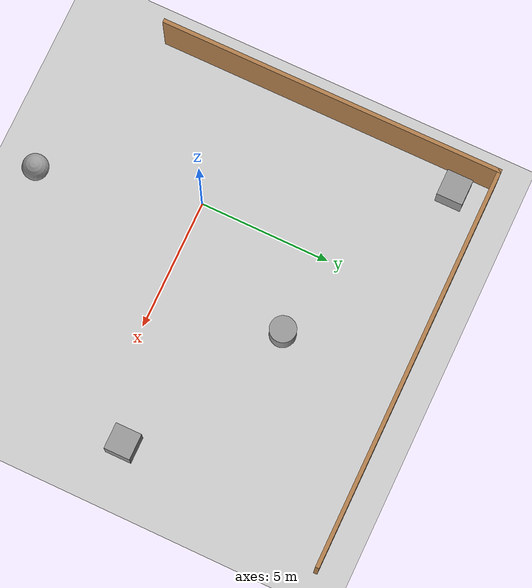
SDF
<sdf version="1.7">
 <world name="default">
  <light name="sun" type="directional">
   <pose>0 0 10 0 -0 0</pose>
   <diffuse>0.8 0.8 0.8 1</diffuse>
   <specular>0.2 0.2 0.2 1</specular>
   <attenuation>
    <range>1000</range>
    <constant>0.9</constant>
    <linear>0.01</linear>
    <quadratic>0.001</quadratic>
   </attenuation>
   <direction>-0.5 0.1 -0.9</direction>
   <spot><inner_angle>0</inner_angle><outer_angle>0</outer_angle><falloff>0</falloff></spot>
  </light>
  <model name="ground_plane">
   <static>1</static>
   <link name="link">
    <collision name="collision">
     <geometry><plane><normal>0 0 1</normal><size>100 100</size></plane></geometry>
     <surface><friction><ode><mu>100</mu><mu2>50</mu2></ode></friction></surface>
    </collision>
    <visual name="visual">
     <cast_shadows>0</cast_shadows>
     <geometry><plane><normal>0 0 1</normal><size>100 100</size></plane></geometry>
     <material>
      <script><uri>file://media/materials/scripts/gazebo.material</uri><name>Gazebo/Grey</name></script>
     </material>
    </visual>
   </link>
  </model>
  <gravity>0 0 -9.8</gravity>
  <magnetic_field>6e-06 2.3e-05 -4.2e-05</magnetic_field>
  <atmosphere type="adiabatic"/>
  <physics type="ode">
   <max_step_size>0.001</max_step_size>
   <real_time_factor>1</real_time_factor>
   <real_time_update_rate>1000</real_time_update_rate>
  </physics>
  <scene><ambient>0.4 0.4 0.4 1</ambient><background>0.7 0.7 0.7 1</background><shadows>1</shadows></scene>
  <audio><device>default</device></audio>
  <spherical_coordinates>
   <surface_model>EARTH_WGS84</surface_model>
   <latitude_deg>0</latitude_deg>
   <longitude_deg>0</longitude_deg>
   <elevation>0</elevation>
   <heading_deg>0</heading_deg>
  </spherical_coordinates>
  <model name="Untitled">
   <pose>2.665 2.77 0 0 -0 0</pose>
   <link name="Wall_1">
    <collision name="Wall_1_Collision">
     <geometry><box><size>13.25 0.15 2.5</size></box></geometry>
     <pose>0 0 1.25 0 -0 0</pose>
    </collision>
    <visual name="Wall_1_Visual">
     <pose>0 0 1.25 0 -0 0</pose>
     <geometry><box><size>13.25 0.15 2.5</size></box></geometry>
     <material>
      <script><uri>file://media/materials/scripts/gazebo.material</uri><name>Gazebo/Wood</name></script>
      <ambient>1 1 1 1</ambient>
     </material>
     <meta><layer>0</layer></meta>
    </visual>
    <pose>-7.675 0 0 0 -0 1.5708</pose>
   </link>
   <link name="Wall_2">
    <collision name="Wall_2_Collision">
     <geometry><box><size>15.5 0.15 2.5</size></box></geometry>
     <pose>0 0 1.25 0 -0 0</pose>
    </collision>
    <visual name="Wall_2_Visual">
     <pose>0 0 1.25 0 -0 0</pose>
     <geometry><box><size>15.5 0.15 2.5</size></box></geometry>
     <material>
      <script><uri>file://media/materials/scripts/gazebo.material</uri><name>Gazebo/Wood</name></script>
      <ambient>1 1 1 1</ambient>
     </material>
     <meta><layer>0</layer></meta>
    </visual>
    <pose>0 6.55 0 0 -0 0</pose>
   </link>
   <static>1</static>
  </model>
  <model name="unit_box">
   <pose>-4.20301 8.09409 0.499995 -1e-05 -0 -0</pose>
   <link name="link">
    <inertial>
     <mass>1</mass>
     <inertia>
      <ixx>0.166667</ixx>
      <ixy>0</ixy>
      <ixz>0</ixz>
      <iyy>0.166667</iyy>
      <iyz>0</iyz>
      <izz>0.166667</izz>
     </inertia>
    </inertial>
    <collision name="collision"><geometry><box><size>1 1 1</size></box></geometry></collision>
    <visual name="visual">
     <geometry><box><size>1 1 1</size></box></geometry>
     <material>
      <script><name>Gazebo/Grey</name><uri>file://media/materials/scripts/gazebo.material</uri></script>
     </material>
    </visual>
   </link>
  </model>
  <model name="unit_box_0">
   <pose>9.15523 1.25815 0.499995 0 1e-05 0</pose>
   <link name="link">
    <inertial>
     <mass>1</mass>
     <inertia>
      <ixx>0.166667</ixx>
      <ixy>0</ixy>
      <ixz>0</ixz>
      <iyy>0.166667</iyy>
      <iyz>0</iyz>
      <izz>0.166667</izz>
     </inertia>
    </inertial>
    <collision name="collision"><geometry><box><size>1 1 1</size></box></geometry></collision>
    <visual name="visual">
     <geometry><box><size>1 1 1</size></box></geometry>
     <material>
      <script><name>Gazebo/Grey</name><uri>file://media/materials/scripts/gazebo.material</uri></script>
     </material>
    </visual>
   </link>
  </model>
  <model name="unit_cylinder">
   <pose>3.13198 4.67537 0.499993 -3e-06 -4e-06 -0</pose>
   <link name="link">
    <inertial>
     <mass>1</mass>
     <inertia><ixx>0.145833</ixx><ixy>0</ixy><ixz>0</ixz><iyy>0.145833</iyy><iyz>0</iyz><izz>0.125</izz></inertia>
    </inertial>
    <collision name="collision">
     <geometry><cylinder><radius>0.5</radius><length>1</length></cylinder></geometry>
    </collision>
    <visual name="visual">
     <geometry><cylinder><radius>0.5</radius><length>1</length></cylinder></geometry>
     <material>
      <script><name>Gazebo/Grey</name><uri>file://media/materials/scripts/gazebo.material</uri></script>
     </material>
    </visual>
   </link>
  </model>
  <model name="unit_sphere">
   <pose>1.41533 -6.0197 0.5 0 -0 0</pose>
   <link name="link">
    <inertial>
     <mass>1</mass>
     <inertia><ixx>0.1</ixx><ixy>0</ixy><ixz>0</ixz><iyy>0.1</iyy><iyz>0</iyz><izz>0.1</izz></inertia>
    </inertial>
    <collision name="collision"><geometry><sphere><radius>0.5</radius></sphere></geometry></collision>
    <visual name="visual">
     <geometry><sphere><radius>0.5</radius></sphere></geometry>
     <material>
      <script><name>Gazebo/Grey</name><uri>file://media/materials/scripts/gazebo.material</uri></script>
     </material>
    </visual>
   </link>
  </model>
 </world>
</sdf>
